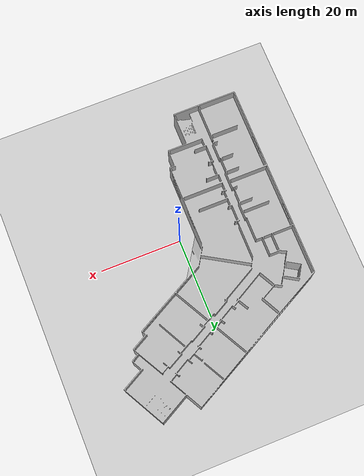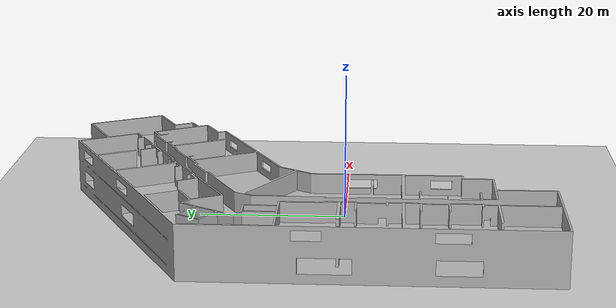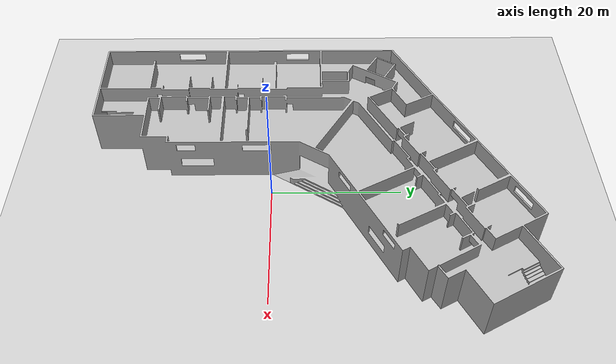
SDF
<?xml version="1.0"?>
<sdf version="1.4">
  <world name="default">
	<include>
		<uri>model://sun</uri>
	</include>
	<include>
		<uri>model://ground_plane</uri>
	</include>
    <model name="hotel">
      <pose>-5 5 2.95244904 0 0 0</pose>
      <static>true</static>
      <link name="hotel">
        <visual name="visual">
          <geometry>
            <mesh><uri>model://hotel.stl</uri></mesh>
          </geometry>
        </visual>
        <collision name="collision">
          <geometry>
            <mesh><uri>model://hotel.stl</uri></mesh>
          </geometry>
        </collision>
      </link>
    </model>
  </world>
</sdf>
